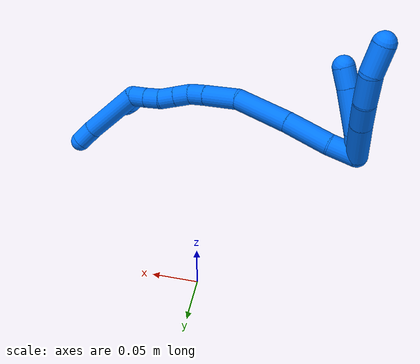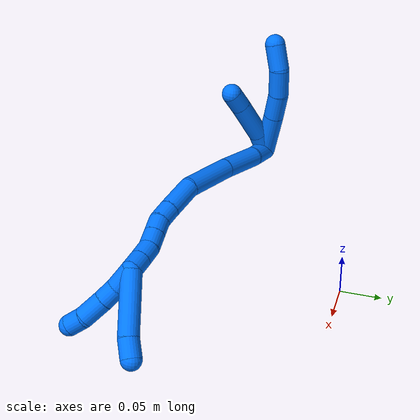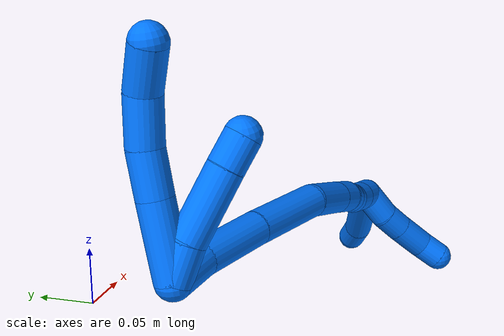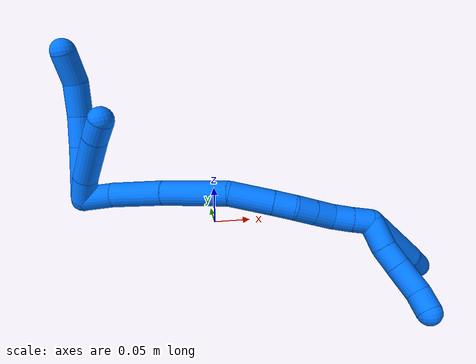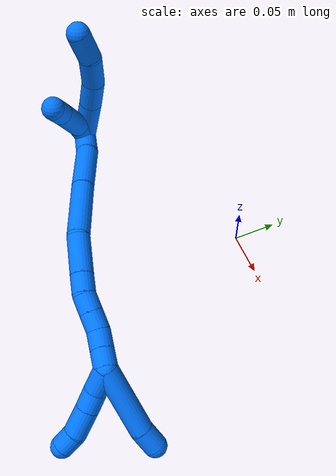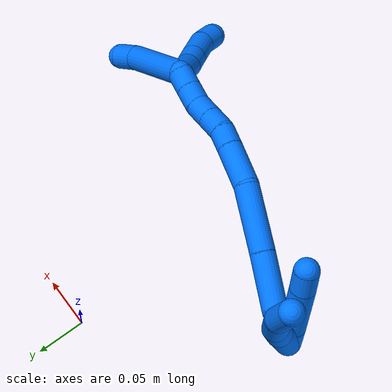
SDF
<sdf version="1.7">
 <world name="default">
  <model name="14">
   <static>0</static>
   <link name="14">
    <collision name="collision-cylinder-e_1_2_8">
     <pose>0.006225 -0.000853 0.025963 0.032857 0.235179 0.003882</pose>
     <geometry><cylinder><radius>0.0125</radius><length>0.053425</length></cylinder></geometry>
     <surface>
      <friction><ode><mu>1.16</mu><mu2>1.16</mu2><slip1>0</slip1><slip2>0</slip2></ode></friction>
      <contact><ode><kp>1e+06</kp><kd>1</kd><max_vel>0</max_vel><min_depth>0.001</min_depth></ode></contact>
     </surface>
    </collision>
    <visual name="visual-cylinder-e_1_2_8">
     <pose>0.006225 -0.000853 0.025963 0.032857 0.235179 0.003882</pose>
     <geometry><cylinder><radius>0.0125</radius><length>0.053425</length></cylinder></geometry>
     <material><ambient>0 0.462745 1 1</ambient></material>
    </visual>
    <collision name="collision-cylinder-e_2_8_9">
     <pose>0.015548 -0.002382 0.06724 0.04409 0.199494 0.004413</pose>
     <geometry><cylinder><radius>0.0125</radius><length>0.031276</length></cylinder></geometry>
     <surface>
      <friction><ode><mu>1.16</mu><mu2>1.16</mu2><slip1>0</slip1><slip2>0</slip2></ode></friction>
      <contact><ode><kp>1e+06</kp><kd>1</kd><max_vel>0</max_vel><min_depth>0.001</min_depth></ode></contact>
     </surface>
    </collision>
    <visual name="visual-cylinder-e_2_8_9">
     <pose>0.015548 -0.002382 0.06724 0.04409 0.199494 0.004413</pose>
     <geometry><cylinder><radius>0.0125</radius><length>0.031276</length></cylinder></geometry>
     <material><ambient>0 0.462745 1 1</ambient></material>
    </visual>
    <collision name="collision-cylinder-e_3_9_10">
     <pose>0.019469 -0.005843 0.099097 0.16678 0.048921 0.00409</pose>
     <geometry><cylinder><radius>0.0125</radius><length>0.033595</length></cylinder></geometry>
     <surface>
      <friction><ode><mu>1.16</mu><mu2>1.16</mu2><slip1>0</slip1><slip2>0</slip2></ode></friction>
      <contact><ode><kp>1e+06</kp><kd>1</kd><max_vel>0</max_vel><min_depth>0.001</min_depth></ode></contact>
     </surface>
    </collision>
    <visual name="visual-cylinder-e_3_9_10">
     <pose>0.019469 -0.005843 0.099097 0.16678 0.048921 0.00409</pose>
     <geometry><cylinder><radius>0.0125</radius><length>0.033595</length></cylinder></geometry>
     <material><ambient>0 0.462745 1 1</ambient></material>
    </visual>
    <collision name="collision-cylinder-e_4_10_6">
     <pose>0.016186 -0.012123 0.130549 0.230252 -0.261877 -0.030455</pose>
     <geometry><cylinder><radius>0.0125</radius><length>0.031703</length></cylinder></geometry>
     <surface>
      <friction><ode><mu>1.16</mu><mu2>1.16</mu2><slip1>0</slip1><slip2>0</slip2></ode></friction>
      <contact><ode><kp>1e+06</kp><kd>1</kd><max_vel>0</max_vel><min_depth>0.001</min_depth></ode></contact>
     </surface>
    </collision>
    <visual name="visual-cylinder-e_4_10_6">
     <pose>0.016186 -0.012123 0.130549 0.230252 -0.261877 -0.030455</pose>
     <geometry><cylinder><radius>0.0125</radius><length>0.031703</length></cylinder></geometry>
     <material><ambient>0 0.462745 1 1</ambient></material>
    </visual>
    <collision name="collision-cylinder-e_1_2_11">
     <pose>0.00059 -0.006874 0.011594 0.535166 0.043732 0.011991</pose>
     <geometry><cylinder><radius>0.0125</radius><length>0.026982</length></cylinder></geometry>
     <surface>
      <friction><ode><mu>1.16</mu><mu2>1.16</mu2><slip1>0</slip1><slip2>0</slip2></ode></friction>
      <contact><ode><kp>1e+06</kp><kd>1</kd><max_vel>0</max_vel><min_depth>0.001</min_depth></ode></contact>
     </surface>
    </collision>
    <visual name="visual-cylinder-e_1_2_11">
     <pose>0.00059 -0.006874 0.011594 0.535166 0.043732 0.011991</pose>
     <geometry><cylinder><radius>0.0125</radius><length>0.026982</length></cylinder></geometry>
     <material><ambient>0 0.462745 1 1</ambient></material>
    </visual>
    <collision name="collision-cylinder-e_2_11_12">
     <pose>0.002729 -0.029921 0.042534 0.696293 0.061383 0.022284</pose>
     <geometry><cylinder><radius>0.0125</radius><length>0.050529</length></cylinder></geometry>
     <surface>
      <friction><ode><mu>1.16</mu><mu2>1.16</mu2><slip1>0</slip1><slip2>0</slip2></ode></friction>
      <contact><ode><kp>1e+06</kp><kd>1</kd><max_vel>0</max_vel><min_depth>0.001</min_depth></ode></contact>
     </surface>
    </collision>
    <visual name="visual-cylinder-e_2_11_12">
     <pose>0.002729 -0.029921 0.042534 0.696293 0.061383 0.022284</pose>
     <geometry><cylinder><radius>0.0125</radius><length>0.050529</length></cylinder></geometry>
     <material><ambient>0 0.462745 1 1</ambient></material>
    </visual>
    <collision name="collision-cylinder-e_3_12_5">
     <pose>0.00532 -0.0536 0.070189 0.73472 0.092656 0.035678</pose>
     <geometry><cylinder><radius>0.0125</radius><length>0.022489</length></cylinder></geometry>
     <surface>
      <friction><ode><mu>1.16</mu><mu2>1.16</mu2><slip1>0</slip1><slip2>0</slip2></ode></friction>
      <contact><ode><kp>1e+06</kp><kd>1</kd><max_vel>0</max_vel><min_depth>0.001</min_depth></ode></contact>
     </surface>
    </collision>
    <visual name="visual-cylinder-e_3_12_5">
     <pose>0.00532 -0.0536 0.070189 0.73472 0.092656 0.035678</pose>
     <geometry><cylinder><radius>0.0125</radius><length>0.022489</length></cylinder></geometry>
     <material><ambient>0 0.462745 1 1</ambient></material>
    </visual>
    <collision name="collision-cylinder-e_1_2_13">
     <pose>0.009924 -0.012541 -0.000538 1.6137 0.668962 0.696031</pose>
     <geometry><cylinder><radius>0.0125</radius><length>0.032003</length></cylinder></geometry>
     <surface>
      <friction><ode><mu>1.16</mu><mu2>1.16</mu2><slip1>0</slip1><slip2>0</slip2></ode></friction>
      <contact><ode><kp>1e+06</kp><kd>1</kd><max_vel>0</max_vel><min_depth>0.001</min_depth></ode></contact>
     </surface>
    </collision>
    <visual name="visual-cylinder-e_1_2_13">
     <pose>0.009924 -0.012541 -0.000538 1.6137 0.668962 0.696031</pose>
     <geometry><cylinder><radius>0.0125</radius><length>0.032003</length></cylinder></geometry>
     <material><ambient>0 0.462745 1 1</ambient></material>
    </visual>
    <collision name="collision-cylinder-e_2_13_14">
     <pose>0.033061 -0.049267 -0.003033 1.65149 0.498672 0.538699</pose>
     <geometry><cylinder><radius>0.0125</radius><length>0.055257</length></cylinder></geometry>
     <surface>
      <friction><ode><mu>1.16</mu><mu2>1.16</mu2><slip1>0</slip1><slip2>0</slip2></ode></friction>
      <contact><ode><kp>1e+06</kp><kd>1</kd><max_vel>0</max_vel><min_depth>0.001</min_depth></ode></contact>
     </surface>
    </collision>
    <visual name="visual-cylinder-e_2_13_14">
     <pose>0.033061 -0.049267 -0.003033 1.65149 0.498672 0.538699</pose>
     <geometry><cylinder><radius>0.0125</radius><length>0.055257</length></cylinder></geometry>
     <material><ambient>0 0.462745 1 1</ambient></material>
    </visual>
    <collision name="collision-cylinder-e_3_14_15">
     <pose>0.062825 -0.102451 -0.00917 1.71401 0.514181 0.589403</pose>
     <geometry><cylinder><radius>0.0125</radius><length>0.0673</length></cylinder></geometry>
     <surface>
      <friction><ode><mu>1.16</mu><mu2>1.16</mu2><slip1>0</slip1><slip2>0</slip2></ode></friction>
      <contact><ode><kp>1e+06</kp><kd>1</kd><max_vel>0</max_vel><min_depth>0.001</min_depth></ode></contact>
     </surface>
    </collision>
    <visual name="visual-cylinder-e_3_14_15">
     <pose>0.062825 -0.102451 -0.00917 1.71401 0.514181 0.589403</pose>
     <geometry><cylinder><radius>0.0125</radius><length>0.0673</length></cylinder></geometry>
     <material><ambient>0 0.462745 1 1</ambient></material>
    </visual>
    <collision name="collision-cylinder-e_4_15_16">
     <pose>0.091872 -0.147396 -0.02134 2.03522 0.611216 0.944687</pose>
     <geometry><cylinder><radius>0.0125</radius><length>0.043555</length></cylinder></geometry>
     <surface>
      <friction><ode><mu>1.16</mu><mu2>1.16</mu2><slip1>0</slip1><slip2>0</slip2></ode></friction>
      <contact><ode><kp>1e+06</kp><kd>1</kd><max_vel>0</max_vel><min_depth>0.001</min_depth></ode></contact>
     </surface>
    </collision>
    <visual name="visual-cylinder-e_4_15_16">
     <pose>0.091872 -0.147396 -0.02134 2.03522 0.611216 0.944687</pose>
     <geometry><cylinder><radius>0.0125</radius><length>0.043555</length></cylinder></geometry>
     <material><ambient>0 0.462745 1 1</ambient></material>
    </visual>
    <collision name="collision-cylinder-e_5_16_17">
     <pose>0.110553 -0.170951 -0.03343 2.06517 0.620936 0.986278</pose>
     <geometry><cylinder><radius>0.0125</radius><length>0.021258</length></cylinder></geometry>
     <surface>
      <friction><ode><mu>1.16</mu><mu2>1.16</mu2><slip1>0</slip1><slip2>0</slip2></ode></friction>
      <contact><ode><kp>1e+06</kp><kd>1</kd><max_vel>0</max_vel><min_depth>0.001</min_depth></ode></contact>
     </surface>
    </collision>
    <visual name="visual-cylinder-e_5_16_17">
     <pose>0.110553 -0.170951 -0.03343 2.06517 0.620936 0.986278</pose>
     <geometry><cylinder><radius>0.0125</radius><length>0.021258</length></cylinder></geometry>
     <material><ambient>0 0.462745 1 1</ambient></material>
    </visual>
    <collision name="collision-cylinder-e_6_17_18">
     <pose>0.124184 -0.183606 -0.042194 2.31681 0.825732 1.57209</pose>
     <geometry><cylinder><radius>0.0125</radius><length>0.020262</length></cylinder></geometry>
     <surface>
      <friction><ode><mu>1.16</mu><mu2>1.16</mu2><slip1>0</slip1><slip2>0</slip2></ode></friction>
      <contact><ode><kp>1e+06</kp><kd>1</kd><max_vel>0</max_vel><min_depth>0.001</min_depth></ode></contact>
     </surface>
    </collision>
    <visual name="visual-cylinder-e_6_17_18">
     <pose>0.124184 -0.183606 -0.042194 2.31681 0.825732 1.57209</pose>
     <geometry><cylinder><radius>0.0125</radius><length>0.020262</length></cylinder></geometry>
     <material><ambient>0 0.462745 1 1</ambient></material>
    </visual>
    <collision name="collision-cylinder-e_7_18_19">
     <pose>0.139089 -0.193637 -0.051502 2.32077 0.83045 1.5839</pose>
     <geometry><cylinder><radius>0.0125</radius><length>0.020205</length></cylinder></geometry>
     <surface>
      <friction><ode><mu>1.16</mu><mu2>1.16</mu2><slip1>0</slip1><slip2>0</slip2></ode></friction>
      <contact><ode><kp>1e+06</kp><kd>1</kd><max_vel>0</max_vel><min_depth>0.001</min_depth></ode></contact>
     </surface>
    </collision>
    <visual name="visual-cylinder-e_7_18_19">
     <pose>0.139089 -0.193637 -0.051502 2.32077 0.83045 1.5839</pose>
     <geometry><cylinder><radius>0.0125</radius><length>0.020205</length></cylinder></geometry>
     <material><ambient>0 0.462745 1 1</ambient></material>
    </visual>
    <collision name="collision-cylinder-e_8_19_20">
     <pose>0.153063 -0.205466 -0.05959 2.037 0.704852 1.07611</pose>
     <geometry><cylinder><radius>0.0125</radius><length>0.020113</length></cylinder></geometry>
     <surface>
      <friction><ode><mu>1.16</mu><mu2>1.16</mu2><slip1>0</slip1><slip2>0</slip2></ode></friction>
      <contact><ode><kp>1e+06</kp><kd>1</kd><max_vel>0</max_vel><min_depth>0.001</min_depth></ode></contact>
     </surface>
    </collision>
    <visual name="visual-cylinder-e_8_19_20">
     <pose>0.153063 -0.205466 -0.05959 2.037 0.704852 1.07611</pose>
     <geometry><cylinder><radius>0.0125</radius><length>0.020113</length></cylinder></geometry>
     <material><ambient>0 0.462745 1 1</ambient></material>
    </visual>
    <collision name="collision-cylinder-e_9_20_1">
     <pose>0.166171 -0.219235 -0.066037 1.97997 0.71781 1.03854</pose>
     <geometry><cylinder><radius>0.0125</radius><length>0.020046</length></cylinder></geometry>
     <surface>
      <friction><ode><mu>1.16</mu><mu2>1.16</mu2><slip1>0</slip1><slip2>0</slip2></ode></friction>
      <contact><ode><kp>1e+06</kp><kd>1</kd><max_vel>0</max_vel><min_depth>0.001</min_depth></ode></contact>
     </surface>
    </collision>
    <visual name="visual-cylinder-e_9_20_1">
     <pose>0.166171 -0.219235 -0.066037 1.97997 0.71781 1.03854</pose>
     <geometry><cylinder><radius>0.0125</radius><length>0.020046</length></cylinder></geometry>
     <material><ambient>0 0.462745 1 1</ambient></material>
    </visual>
    <collision name="collision-cylinder-e_1_1_21">
     <pose>0.196686 -0.232036 -0.097839 2.94036 0.683183 2.58823</pose>
     <geometry><cylinder><radius>0.0125</radius><length>0.075793</length></cylinder></geometry>
     <surface>
      <friction><ode><mu>1.16</mu><mu2>1.16</mu2><slip1>0</slip1><slip2>0</slip2></ode></friction>
      <contact><ode><kp>1e+06</kp><kd>1</kd><max_vel>0</max_vel><min_depth>0.001</min_depth></ode></contact>
     </surface>
    </collision>
    <visual name="visual-cylinder-e_1_1_21">
     <pose>0.196686 -0.232036 -0.097839 2.94036 0.683183 2.58823</pose>
     <geometry><cylinder><radius>0.0125</radius><length>0.075793</length></cylinder></geometry>
     <material><ambient>0 0.462745 1 1</ambient></material>
    </visual>
    <collision name="collision-cylinder-e_2_21_4">
     <pose>0.228961 -0.237905 -0.135397 -3.14093 0.761551 -3.13993</pose>
     <geometry><cylinder><radius>0.0125</radius><length>0.024207</length></cylinder></geometry>
     <surface>
      <friction><ode><mu>1.16</mu><mu2>1.16</mu2><slip1>0</slip1><slip2>0</slip2></ode></friction>
      <contact><ode><kp>1e+06</kp><kd>1</kd><max_vel>0</max_vel><min_depth>0.001</min_depth></ode></contact>
     </surface>
    </collision>
    <visual name="visual-cylinder-e_2_21_4">
     <pose>0.228961 -0.237905 -0.135397 -3.14093 0.761551 -3.13993</pose>
     <geometry><cylinder><radius>0.0125</radius><length>0.024207</length></cylinder></geometry>
     <material><ambient>0 0.462745 1 1</ambient></material>
    </visual>
    <collision name="collision-cylinder-e_1_1_22">
     <pose>0.170368 -0.232798 -0.081095 2.63833 -0.172353 -0.648374</pose>
     <geometry><cylinder><radius>0.0125</radius><length>0.027936</length></cylinder></geometry>
     <surface>
      <friction><ode><mu>1.16</mu><mu2>1.16</mu2><slip1>0</slip1><slip2>0</slip2></ode></friction>
      <contact><ode><kp>1e+06</kp><kd>1</kd><max_vel>0</max_vel><min_depth>0.001</min_depth></ode></contact>
     </surface>
    </collision>
    <visual name="visual-cylinder-e_1_1_22">
     <pose>0.170368 -0.232798 -0.081095 2.63833 -0.172353 -0.648374</pose>
     <geometry><cylinder><radius>0.0125</radius><length>0.027936</length></cylinder></geometry>
     <material><ambient>0 0.462745 1 1</ambient></material>
    </visual>
    <collision name="collision-cylinder-e_2_22_23">
     <pose>0.167084 -0.246151 -0.101391 2.45781 -0.083379 -0.23337</pose>
     <geometry><cylinder><radius>0.0125</radius><length>0.021336</length></cylinder></geometry>
     <surface>
      <friction><ode><mu>1.16</mu><mu2>1.16</mu2><slip1>0</slip1><slip2>0</slip2></ode></friction>
      <contact><ode><kp>1e+06</kp><kd>1</kd><max_vel>0</max_vel><min_depth>0.001</min_depth></ode></contact>
     </surface>
    </collision>
    <visual name="visual-cylinder-e_2_22_23">
     <pose>0.167084 -0.246151 -0.101391 2.45781 -0.083379 -0.23337</pose>
     <geometry><cylinder><radius>0.0125</radius><length>0.021336</length></cylinder></geometry>
     <material><ambient>0 0.462745 1 1</ambient></material>
    </visual>
    <collision name="collision-cylinder-e_3_23_24">
     <pose>0.164498 -0.262886 -0.121008 2.41954 -0.111512 -0.293517</pose>
     <geometry><cylinder><radius>0.0125</radius><length>0.030506</length></cylinder></geometry>
     <surface>
      <friction><ode><mu>1.16</mu><mu2>1.16</mu2><slip1>0</slip1><slip2>0</slip2></ode></friction>
      <contact><ode><kp>1e+06</kp><kd>1</kd><max_vel>0</max_vel><min_depth>0.001</min_depth></ode></contact>
     </surface>
    </collision>
    <visual name="visual-cylinder-e_3_23_24">
     <pose>0.164498 -0.262886 -0.121008 2.41954 -0.111512 -0.293517</pose>
     <geometry><cylinder><radius>0.0125</radius><length>0.030506</length></cylinder></geometry>
     <material><ambient>0 0.462745 1 1</ambient></material>
    </visual>
    <collision name="collision-cylinder-e_4_24_3">
     <pose>0.158945 -0.279332 -0.139169 2.38327 -0.391269 -0.923074</pose>
     <geometry><cylinder><radius>0.0125</radius><length>0.020221</length></cylinder></geometry>
     <surface>
      <friction><ode><mu>1.16</mu><mu2>1.16</mu2><slip1>0</slip1><slip2>0</slip2></ode></friction>
      <contact><ode><kp>1e+06</kp><kd>1</kd><max_vel>0</max_vel><min_depth>0.001</min_depth></ode></contact>
     </surface>
    </collision>
    <visual name="visual-cylinder-e_4_24_3">
     <pose>0.158945 -0.279332 -0.139169 2.38327 -0.391269 -0.923074</pose>
     <geometry><cylinder><radius>0.0125</radius><length>0.020221</length></cylinder></geometry>
     <material><ambient>0 0.462745 1 1</ambient></material>
    </visual>
    <collision name="collision-sphere-3">
     <pose>0.155089 -0.28576 -0.145955 0 -0 0</pose>
     <geometry><sphere><radius>0.0125</radius></sphere></geometry>
     <surface>
      <friction><ode><mu>1.16</mu><mu2>1.16</mu2><slip1>0</slip1><slip2>0</slip2></ode></friction>
      <contact><ode><kp>1e+06</kp><kd>1</kd><max_vel>0</max_vel><min_depth>0.001</min_depth></ode></contact>
     </surface>
    </collision>
    <visual name="visual-sphere-3">
     <pose>0.155089 -0.28576 -0.145955 0 -0 0</pose>
     <geometry><sphere><radius>0.0125</radius></sphere></geometry>
     <material><ambient>0 0.462745 1 1</ambient></material>
    </visual>
    <collision name="collision-sphere-24">
     <pose>0.162801 -0.272904 -0.132384 0 -0 0</pose>
     <geometry><sphere><radius>0.0125</radius></sphere></geometry>
     <surface>
      <friction><ode><mu>1.16</mu><mu2>1.16</mu2><slip1>0</slip1><slip2>0</slip2></ode></friction>
      <contact><ode><kp>1e+06</kp><kd>1</kd><max_vel>0</max_vel><min_depth>0.001</min_depth></ode></contact>
     </surface>
    </collision>
    <visual name="visual-sphere-24">
     <pose>0.162801 -0.272904 -0.132384 0 -0 0</pose>
     <geometry><sphere><radius>0.0125</radius></sphere></geometry>
     <material><ambient>0 0.462745 1 1</ambient></material>
    </visual>
    <collision name="collision-sphere-23">
     <pose>0.166195 -0.252867 -0.109632 0 -0 0</pose>
     <geometry><sphere><radius>0.0125</radius></sphere></geometry>
     <surface>
      <friction><ode><mu>1.16</mu><mu2>1.16</mu2><slip1>0</slip1><slip2>0</slip2></ode></friction>
      <contact><ode><kp>1e+06</kp><kd>1</kd><max_vel>0</max_vel><min_depth>0.001</min_depth></ode></contact>
     </surface>
    </collision>
    <visual name="visual-sphere-23">
     <pose>0.166195 -0.252867 -0.109632 0 -0 0</pose>
     <geometry><sphere><radius>0.0125</radius></sphere></geometry>
     <material><ambient>0 0.462745 1 1</ambient></material>
    </visual>
    <collision name="collision-sphere-22">
     <pose>0.167972 -0.239435 -0.09315 0 -0 0</pose>
     <geometry><sphere><radius>0.0125</radius></sphere></geometry>
     <surface>
      <friction><ode><mu>1.16</mu><mu2>1.16</mu2><slip1>0</slip1><slip2>0</slip2></ode></friction>
      <contact><ode><kp>1e+06</kp><kd>1</kd><max_vel>0</max_vel><min_depth>0.001</min_depth></ode></contact>
     </surface>
    </collision>
    <visual name="visual-sphere-22">
     <pose>0.167972 -0.239435 -0.09315 0 -0 0</pose>
     <geometry><sphere><radius>0.0125</radius></sphere></geometry>
     <material><ambient>0 0.462745 1 1</ambient></material>
    </visual>
    <collision name="collision-sphere-4">
     <pose>0.237313 -0.237899 -0.144157 0 -0 0</pose>
     <geometry><sphere><radius>0.0125</radius></sphere></geometry>
     <surface>
      <friction><ode><mu>1.16</mu><mu2>1.16</mu2><slip1>0</slip1><slip2>0</slip2></ode></friction>
      <contact><ode><kp>1e+06</kp><kd>1</kd><max_vel>0</max_vel><min_depth>0.001</min_depth></ode></contact>
     </surface>
    </collision>
    <visual name="visual-sphere-4">
     <pose>0.237313 -0.237899 -0.144157 0 -0 0</pose>
     <geometry><sphere><radius>0.0125</radius></sphere></geometry>
     <material><ambient>0 0.462745 1 1</ambient></material>
    </visual>
    <collision name="collision-sphere-21">
     <pose>0.220609 -0.237911 -0.126637 0 -0 0</pose>
     <geometry><sphere><radius>0.0125</radius></sphere></geometry>
     <surface>
      <friction><ode><mu>1.16</mu><mu2>1.16</mu2><slip1>0</slip1><slip2>0</slip2></ode></friction>
      <contact><ode><kp>1e+06</kp><kd>1</kd><max_vel>0</max_vel><min_depth>0.001</min_depth></ode></contact>
     </surface>
    </collision>
    <visual name="visual-sphere-21">
     <pose>0.220609 -0.237911 -0.126637 0 -0 0</pose>
     <geometry><sphere><radius>0.0125</radius></sphere></geometry>
     <material><ambient>0 0.462745 1 1</ambient></material>
    </visual>
    <collision name="collision-sphere-1">
     <pose>0.172763 -0.226162 -0.069041 0 -0 0</pose>
     <geometry><sphere><radius>0.0125</radius></sphere></geometry>
     <surface>
      <friction><ode><mu>1.16</mu><mu2>1.16</mu2><slip1>0</slip1><slip2>0</slip2></ode></friction>
      <contact><ode><kp>1e+06</kp><kd>1</kd><max_vel>0</max_vel><min_depth>0.001</min_depth></ode></contact>
     </surface>
    </collision>
    <visual name="visual-sphere-1">
     <pose>0.172763 -0.226162 -0.069041 0 -0 0</pose>
     <geometry><sphere><radius>0.0125</radius></sphere></geometry>
     <material><ambient>0 0.462745 1 1</ambient></material>
    </visual>
    <collision name="collision-sphere-11">
     <pose>0.00118 -0.013747 0.023187 0 -0 0</pose>
     <geometry><sphere><radius>0.0125</radius></sphere></geometry>
     <surface>
      <friction><ode><mu>1.16</mu><mu2>1.16</mu2><slip1>0</slip1><slip2>0</slip2></ode></friction>
      <contact><ode><kp>1e+06</kp><kd>1</kd><max_vel>0</max_vel><min_depth>0.001</min_depth></ode></contact>
     </surface>
    </collision>
    <visual name="visual-sphere-11">
     <pose>0.00118 -0.013747 0.023187 0 -0 0</pose>
     <geometry><sphere><radius>0.0125</radius></sphere></geometry>
     <material><ambient>0 0.462745 1 1</ambient></material>
    </visual>
    <collision name="collision-sphere-6">
     <pose>0.012082 -0.015617 0.145456 0 -0 0</pose>
     <geometry><sphere><radius>0.0125</radius></sphere></geometry>
     <surface>
      <friction><ode><mu>1.16</mu><mu2>1.16</mu2><slip1>0</slip1><slip2>0</slip2></ode></friction>
      <contact><ode><kp>1e+06</kp><kd>1</kd><max_vel>0</max_vel><min_depth>0.001</min_depth></ode></contact>
     </surface>
    </collision>
    <visual name="visual-sphere-6">
     <pose>0.012082 -0.015617 0.145456 0 -0 0</pose>
     <geometry><sphere><radius>0.0125</radius></sphere></geometry>
     <material><ambient>0 0.462745 1 1</ambient></material>
    </visual>
    <collision name="collision-sphere-10">
     <pose>0.02029 -0.008628 0.115642 0 -0 0</pose>
     <geometry><sphere><radius>0.0125</radius></sphere></geometry>
     <surface>
      <friction><ode><mu>1.16</mu><mu2>1.16</mu2><slip1>0</slip1><slip2>0</slip2></ode></friction>
      <contact><ode><kp>1e+06</kp><kd>1</kd><max_vel>0</max_vel><min_depth>0.001</min_depth></ode></contact>
     </surface>
    </collision>
    <visual name="visual-sphere-10">
     <pose>0.02029 -0.008628 0.115642 0 -0 0</pose>
     <geometry><sphere><radius>0.0125</radius></sphere></geometry>
     <material><ambient>0 0.462745 1 1</ambient></material>
    </visual>
    <collision name="collision-sphere-9">
     <pose>0.018647 -0.003058 0.082553 0 -0 0</pose>
     <geometry><sphere><radius>0.0125</radius></sphere></geometry>
     <surface>
      <friction><ode><mu>1.16</mu><mu2>1.16</mu2><slip1>0</slip1><slip2>0</slip2></ode></friction>
      <contact><ode><kp>1e+06</kp><kd>1</kd><max_vel>0</max_vel><min_depth>0.001</min_depth></ode></contact>
     </surface>
    </collision>
    <visual name="visual-sphere-9">
     <pose>0.018647 -0.003058 0.082553 0 -0 0</pose>
     <geometry><sphere><radius>0.0125</radius></sphere></geometry>
     <material><ambient>0 0.462745 1 1</ambient></material>
    </visual>
    <collision name="collision-sphere-2">
     <geometry><sphere><radius>0.0125</radius></sphere></geometry>
     <surface>
      <friction><ode><mu>1.16</mu><mu2>1.16</mu2><slip1>0</slip1><slip2>0</slip2></ode></friction>
      <contact><ode><kp>1e+06</kp><kd>1</kd><max_vel>0</max_vel><min_depth>0.001</min_depth></ode></contact>
     </surface>
    </collision>
    <visual name="visual-sphere-2">
     <geometry><sphere><radius>0.0125</radius></sphere></geometry>
     <material><ambient>0 0.462745 1 1</ambient></material>
    </visual>
    <collision name="collision-sphere-19">
     <pose>0.146547 -0.198623 -0.056147 0 -0 0</pose>
     <geometry><sphere><radius>0.0125</radius></sphere></geometry>
     <surface>
      <friction><ode><mu>1.16</mu><mu2>1.16</mu2><slip1>0</slip1><slip2>0</slip2></ode></friction>
      <contact><ode><kp>1e+06</kp><kd>1</kd><max_vel>0</max_vel><min_depth>0.001</min_depth></ode></contact>
     </surface>
    </collision>
    <visual name="visual-sphere-19">
     <pose>0.146547 -0.198623 -0.056147 0 -0 0</pose>
     <geometry><sphere><radius>0.0125</radius></sphere></geometry>
     <material><ambient>0 0.462745 1 1</ambient></material>
    </visual>
    <collision name="collision-sphere-8">
     <pose>0.012449 -0.001707 0.051927 0 -0 0</pose>
     <geometry><sphere><radius>0.0125</radius></sphere></geometry>
     <surface>
      <friction><ode><mu>1.16</mu><mu2>1.16</mu2><slip1>0</slip1><slip2>0</slip2></ode></friction>
      <contact><ode><kp>1e+06</kp><kd>1</kd><max_vel>0</max_vel><min_depth>0.001</min_depth></ode></contact>
     </surface>
    </collision>
    <visual name="visual-sphere-8">
     <pose>0.012449 -0.001707 0.051927 0 -0 0</pose>
     <geometry><sphere><radius>0.0125</radius></sphere></geometry>
     <material><ambient>0 0.462745 1 1</ambient></material>
    </visual>
    <collision name="collision-sphere-12">
     <pose>0.004279 -0.046095 0.061882 0 -0 0</pose>
     <geometry><sphere><radius>0.0125</radius></sphere></geometry>
     <surface>
      <friction><ode><mu>1.16</mu><mu2>1.16</mu2><slip1>0</slip1><slip2>0</slip2></ode></friction>
      <contact><ode><kp>1e+06</kp><kd>1</kd><max_vel>0</max_vel><min_depth>0.001</min_depth></ode></contact>
     </surface>
    </collision>
    <visual name="visual-sphere-12">
     <pose>0.004279 -0.046095 0.061882 0 -0 0</pose>
     <geometry><sphere><radius>0.0125</radius></sphere></geometry>
     <material><ambient>0 0.462745 1 1</ambient></material>
    </visual>
    <collision name="collision-sphere-5">
     <pose>0.00636 -0.061106 0.078497 0 -0 0</pose>
     <geometry><sphere><radius>0.0125</radius></sphere></geometry>
     <surface>
      <friction><ode><mu>1.16</mu><mu2>1.16</mu2><slip1>0</slip1><slip2>0</slip2></ode></friction>
      <contact><ode><kp>1e+06</kp><kd>1</kd><max_vel>0</max_vel><min_depth>0.001</min_depth></ode></contact>
     </surface>
    </collision>
    <visual name="visual-sphere-5">
     <pose>0.00636 -0.061106 0.078497 0 -0 0</pose>
     <geometry><sphere><radius>0.0125</radius></sphere></geometry>
     <material><ambient>0 0.462745 1 1</ambient></material>
    </visual>
    <collision name="collision-sphere-13">
     <pose>0.019848 -0.025082 -0.001077 0 -0 0</pose>
     <geometry><sphere><radius>0.0125</radius></sphere></geometry>
     <surface>
      <friction><ode><mu>1.16</mu><mu2>1.16</mu2><slip1>0</slip1><slip2>0</slip2></ode></friction>
      <contact><ode><kp>1e+06</kp><kd>1</kd><max_vel>0</max_vel><min_depth>0.001</min_depth></ode></contact>
     </surface>
    </collision>
    <visual name="visual-sphere-13">
     <pose>0.019848 -0.025082 -0.001077 0 -0 0</pose>
     <geometry><sphere><radius>0.0125</radius></sphere></geometry>
     <material><ambient>0 0.462745 1 1</ambient></material>
    </visual>
    <collision name="collision-sphere-14">
     <pose>0.046275 -0.073452 -0.004989 0 -0 0</pose>
     <geometry><sphere><radius>0.0125</radius></sphere></geometry>
     <surface>
      <friction><ode><mu>1.16</mu><mu2>1.16</mu2><slip1>0</slip1><slip2>0</slip2></ode></friction>
      <contact><ode><kp>1e+06</kp><kd>1</kd><max_vel>0</max_vel><min_depth>0.001</min_depth></ode></contact>
     </surface>
    </collision>
    <visual name="visual-sphere-14">
     <pose>0.046275 -0.073452 -0.004989 0 -0 0</pose>
     <geometry><sphere><radius>0.0125</radius></sphere></geometry>
     <material><ambient>0 0.462745 1 1</ambient></material>
    </visual>
    <collision name="collision-sphere-15">
     <pose>0.079375 -0.13145 -0.013352 0 -0 0</pose>
     <geometry><sphere><radius>0.0125</radius></sphere></geometry>
     <surface>
      <friction><ode><mu>1.16</mu><mu2>1.16</mu2><slip1>0</slip1><slip2>0</slip2></ode></friction>
      <contact><ode><kp>1e+06</kp><kd>1</kd><max_vel>0</max_vel><min_depth>0.001</min_depth></ode></contact>
     </surface>
    </collision>
    <visual name="visual-sphere-15">
     <pose>0.079375 -0.13145 -0.013352 0 -0 0</pose>
     <geometry><sphere><radius>0.0125</radius></sphere></geometry>
     <material><ambient>0 0.462745 1 1</ambient></material>
    </visual>
    <collision name="collision-sphere-16">
     <pose>0.104369 -0.163341 -0.029328 0 -0 0</pose>
     <geometry><sphere><radius>0.0125</radius></sphere></geometry>
     <surface>
      <friction><ode><mu>1.16</mu><mu2>1.16</mu2><slip1>0</slip1><slip2>0</slip2></ode></friction>
      <contact><ode><kp>1e+06</kp><kd>1</kd><max_vel>0</max_vel><min_depth>0.001</min_depth></ode></contact>
     </surface>
    </collision>
    <visual name="visual-sphere-16">
     <pose>0.104369 -0.163341 -0.029328 0 -0 0</pose>
     <geometry><sphere><radius>0.0125</radius></sphere></geometry>
     <material><ambient>0 0.462745 1 1</ambient></material>
    </visual>
    <collision name="collision-sphere-17">
     <pose>0.116737 -0.178561 -0.037532 0 -0 0</pose>
     <geometry><sphere><radius>0.0125</radius></sphere></geometry>
     <surface>
      <friction><ode><mu>1.16</mu><mu2>1.16</mu2><slip1>0</slip1><slip2>0</slip2></ode></friction>
      <contact><ode><kp>1e+06</kp><kd>1</kd><max_vel>0</max_vel><min_depth>0.001</min_depth></ode></contact>
     </surface>
    </collision>
    <visual name="visual-sphere-17">
     <pose>0.116737 -0.178561 -0.037532 0 -0 0</pose>
     <geometry><sphere><radius>0.0125</radius></sphere></geometry>
     <material><ambient>0 0.462745 1 1</ambient></material>
    </visual>
    <collision name="collision-sphere-18">
     <pose>0.13163 -0.18865 -0.046857 0 -0 0</pose>
     <geometry><sphere><radius>0.0125</radius></sphere></geometry>
     <surface>
      <friction><ode><mu>1.16</mu><mu2>1.16</mu2><slip1>0</slip1><slip2>0</slip2></ode></friction>
      <contact><ode><kp>1e+06</kp><kd>1</kd><max_vel>0</max_vel><min_depth>0.001</min_depth></ode></contact>
     </surface>
    </collision>
    <visual name="visual-sphere-18">
     <pose>0.13163 -0.18865 -0.046857 0 -0 0</pose>
     <geometry><sphere><radius>0.0125</radius></sphere></geometry>
     <material><ambient>0 0.462745 1 1</ambient></material>
    </visual>
    <collision name="collision-sphere-20">
     <pose>0.159578 -0.212309 -0.063033 0 -0 0</pose>
     <geometry><sphere><radius>0.0125</radius></sphere></geometry>
     <surface>
      <friction><ode><mu>1.16</mu><mu2>1.16</mu2><slip1>0</slip1><slip2>0</slip2></ode></friction>
      <contact><ode><kp>1e+06</kp><kd>1</kd><max_vel>0</max_vel><min_depth>0.001</min_depth></ode></contact>
     </surface>
    </collision>
    <visual name="visual-sphere-20">
     <pose>0.159578 -0.212309 -0.063033 0 -0 0</pose>
     <geometry><sphere><radius>0.0125</radius></sphere></geometry>
     <material><ambient>0 0.462745 1 1</ambient></material>
    </visual>
    <inertial>
     <pose>0.084969 -0.118141 -0.017985 0 -0 0</pose>
     <mass>0.75</mass>
     <inertia>
      <ixx>0.000129</ixx>
      <ixy>0</ixy>
      <ixz>0</ixz>
      <iyy>0.000101</iyy>
      <iyz>0</iyz>
      <izz>1.4e-05</izz>
     </inertia>
    </inertial>
   </link>
   <pose>-0.149978 -0.133604 0.094368 -0.176688 -0.07234 0.654287</pose>
  </model>
 </world>
</sdf>
